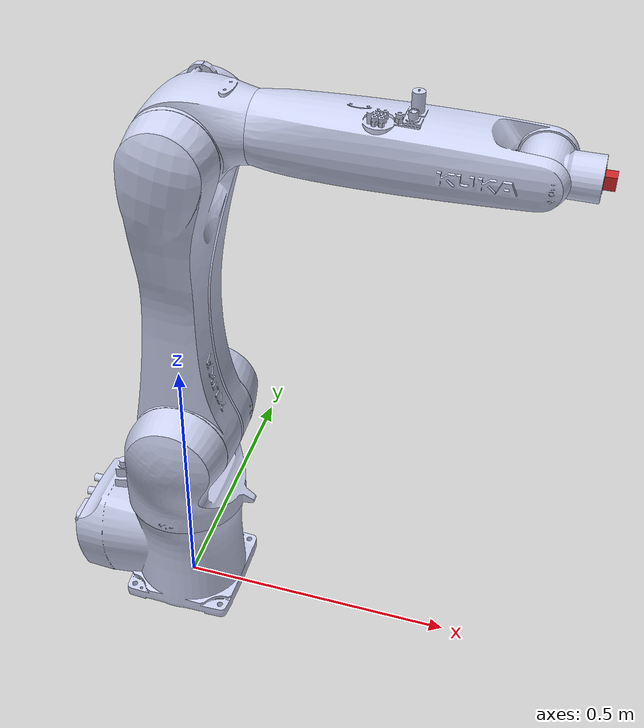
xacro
<?xml version="1.0"?>
<robot xmlns:xacro="http://ros.org/wiki/xacro"
       name="kr10">>

  <!-- common stuff // load kr_arm_gazebo macro -->
  <xacro:include filename="$(find kuka_kr10_urdf)/urdf/common.gazebo.xacro" />

  <!-- load kr10_robot & camera macros  -->
  <xacro:include filename="$(find kuka_kr10_urdf)/urdf/kr10.urdf.xacro" />
  <xacro:include filename="$(find kuka_kr10_urdf)/urdf/camera.xacro" />

  <!-- execute macros -->
  <xacro:kr10_robot prefix=""/>
  <xacro:camera />

</robot>

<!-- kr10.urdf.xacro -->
<robot xmlns:controller="http://playerstage.sourceforge.net/gazebo/xmlschema/#controller"
       xmlns:interface="http://ros.org/wiki/xacro"
       xmlns:sensor="http://playerstage.sourceforge.net/gazebo/xmlschema/#sensor"
       xmlns:xacro="http://ros.org/wiki/xacro">

  <xacro:include filename="$(find kuka_kr10_urdf)/urdf/kr10.transmission.xacro" />
  <xacro:include filename="$(find kuka_kr10_urdf)/urdf/kr10.gazebo.xacro" />

  <xacro:property name="damping" value="0.2" />
  <xacro:property name="friction" value="1.0" />

<xacro:macro name="default_inertia">
  <inertia ixx="0.1" ixy="0.000"  ixz="0.000"
           iyy="0.1" iyz="0.000"
           izz="0.1"
  />
</xacro:macro>

<xacro:macro name="kr10_robot" params="prefix">

  <link name="world" />

  <joint name="world_joint" type="fixed">
    <parent link="world" />
    <child link = "base_link" />
    <origin xyz="0.0 0.0 0.005" rpy="0.0 0.0 0.0" />
  </joint>

<!-- Kinematic model -->

  <link
    name="base_link">
    <inertial>
      <origin
        xyz="-0.044481 -5.0058E-05 0.10609"
        rpy="0 0 0" />
      <mass
        value="10.507" />
      <xacro:default_inertia />
    </inertial>
    <visual>
      <origin
        xyz="0 0 0"
        rpy="0 0 0" />
      <geometry>
        <mesh
          filename="package://kuka_kr10_urdf/meshes/base_link.STL" />
      </geometry>
      <material
        name="">
        <color
          rgba="0.79216 0.81961 0.93333 1" />
      </material>
    </visual>
    <collision>
      <origin
        xyz="0 0 0"
        rpy="0 0 0" />
      <geometry>
        <mesh
          filename="package://kuka_kr10_urdf/meshes/base_link.STL" />
      </geometry>
    </collision>
  </link>
  <link
    name="Link_1">
    <inertial>
      <origin
        xyz="0.00796588282256565 0.00201742612994055 0.115716194551813"
        rpy="0 0 0" />
      <mass
        value="6.2752263325597" />
      <xacro:default_inertia />
    </inertial>
    <visual>
      <origin
        xyz="0 0 0"
        rpy="0 0 0" />
      <geometry>
        <mesh
          filename="package://kuka_kr10_urdf/meshes/Link_1.STL" />
      </geometry>
      <material
        name="">
        <color
          rgba="0.792156862745098 0.819607843137255 0.933333333333333 1" />
      </material>
    </visual>
    <collision>
      <origin
        xyz="0 0 0"
        rpy="0 0 0" />
      <geometry>
        <mesh
          filename="package://kuka_kr10_urdf/meshes/Link_1.STL" />
      </geometry>
    </collision>
  </link>
  <joint
    name="Joint_1"
    type="continuous">
    <origin
      xyz="0 0 0.213"
      rpy="0 0 0" />
    <parent
      link="base_link" />
    <child
      link="Link_1" />
    <axis
      xyz="0 0 1" />
    <limit effort="100.0" lower="${radians(-170)}" upper="${radians(170)}" velocity="3.0"/>
    <dynamics damping="${damping}" friction="${friction}"/>
  </joint>
  <link
    name="Link_2">
    <inertial>
      <origin
        xyz="-0.0083425 -0.0044476 0.26096"
        rpy="0 0 0" />
      <mass
        value="10.062" />
      <xacro:default_inertia />
    </inertial>
    <visual>
      <origin
        xyz="0 0 0"
        rpy="0 0 0" />
      <geometry>
        <mesh
          filename="package://kuka_kr10_urdf/meshes/Link_2.STL" />
      </geometry>
      <material
        name="">
        <color
          rgba="0.79216 0.81961 0.93333 1" />
      </material>
    </visual>
    <collision>
      <origin
        xyz="0 0 0"
        rpy="0 0 0" />
      <geometry>
        <mesh
          filename="package://kuka_kr10_urdf/meshes/Link_2.STL" />
      </geometry>
    </collision>
  </link>
  <joint
    name="Joint_2"
    type="continuous">
    <origin
      xyz="0.025 0 0.183"
      rpy="0 0.030324 0" />
    <parent
      link="Link_1" />
    <child
      link="Link_2" />
    <axis
      xyz="0 1 0" />
    <limit effort="100.0" lower="${radians(-190)}" upper="${radians(45)}" velocity="3.0"/>
    <dynamics damping="${damping}" friction="${friction}"/>
  </joint>
  <link
    name="Link_3">
    <inertial>
      <origin
        xyz="0.01607 2.4742E-05 0.010478"
        rpy="0 0 0" />
      <mass
        value="2.8742" />
      <xacro:default_inertia />
    </inertial>
    <visual>
      <origin
        xyz="0 0 0"
        rpy="0 0 0" />
      <geometry>
        <mesh
          filename="package://kuka_kr10_urdf/meshes/Link_3.STL" />
      </geometry>
      <material
        name="">
        <color
          rgba="0.79216 0.81961 0.93333 1" />
      </material>
    </visual>
    <collision>
      <origin
        xyz="0 0 0"
        rpy="0 0 0" />
      <geometry>
        <mesh
          filename="package://kuka_kr10_urdf/meshes/Link_3.STL" />
      </geometry>
    </collision>
  </link>
  <joint
    name="Joint_3"
    type="continuous">
    <origin
      xyz="0 0 0.56"
      rpy="0 -0.030324 0" />
    <parent
      link="Link_2" />
    <child
      link="Link_3" />
    <axis
      xyz="0 1 0" />
    <limit effort="100.0" lower="${radians(-120)}" upper="${radians(156)}" velocity="3.0"/>
    <dynamics damping="${damping}" friction="${friction}"/>
  </joint>
  <link
    name="Link_4">
    <inertial>
      <origin
        xyz="0.195135071129115 -0.000495676139749157 0.000329967769836514"
        rpy="0 0 0" />
      <mass
        value="4.03663145228616" />
      <xacro:default_inertia />
    </inertial>
    <visual>
      <origin
        xyz="0 0 0"
        rpy="0 0 0" />
      <geometry>
        <mesh
          filename="package://kuka_kr10_urdf/meshes/Link_4.STL" />
      </geometry>
      <material
        name="">
        <color
          rgba="0.792156862745098 0.819607843137255 0.933333333333333 1" />
      </material>
    </visual>
    <collision>
      <origin
        xyz="0 0 0"
        rpy="0 0 0" />
      <geometry>
        <mesh
          filename="package://kuka_kr10_urdf/meshes/Link_4.STL" />
      </geometry>
    </collision>
  </link>
  <joint
    name="Joint_4"
    type="continuous">
    <origin
      xyz="0.10698 0 0.035"
      rpy="0 0 0" />
    <parent
      link="Link_3" />
    <child
      link="Link_4" />
    <axis
      xyz="1 0 0" />
    <limit effort="100.0" lower="${radians(-185)}" upper="${radians(185)}" velocity="3.0"/>
    <dynamics damping="${damping}" friction="${friction}"/>
  </joint>
  <link
    name="Link_5">
    <inertial>
      <origin
        xyz="0.016609 0.0018881 -2.9968E-05"
        rpy="0 0 0" />
      <mass
        value="0.44798" />
      <xacro:default_inertia />
    </inertial>
    <visual>
      <origin
        xyz="0 0 0"
        rpy="0 0 0" />
      <geometry>
        <mesh
          filename="package://kuka_kr10_urdf/meshes/Link_5.STL" />
      </geometry>
      <material
        name="">
        <color
          rgba="0.79216 0.81961 0.93333 1" />
      </material>
    </visual>
    <collision>
      <origin
        xyz="0 0 0"
        rpy="0 0 0" />
      <geometry>
        <mesh
          filename="package://kuka_kr10_urdf/meshes/Link_5.STL" />
      </geometry>
    </collision>
  </link>
  <joint
    name="Joint_5"
    type="continuous">
    <origin
      xyz="0.40802 0 0"
      rpy="0 0 0" />
    <parent
      link="Link_4" />
    <child
      link="Link_5" />
    <axis
      xyz="0 1 0" />
    <limit effort="100.0" lower="${radians(-120)}" upper="${radians(120)}" velocity="3.0"/>
    <dynamics damping="${damping}" friction="${friction}"/>
  </joint>
  <link
    name="Link_6">
    <inertial>
      <origin
        xyz="0.00597810440147417 5.10702591327572E-15 4.33845548888367E-05"
        rpy="0 0 0" />
      <mass
        value="0.013916296749675" />
      <xacro:default_inertia />
    </inertial>
    <visual>
      <origin
        xyz="0 0 0"
        rpy="0 0 0" />
      <geometry>
        <mesh
          filename="package://kuka_kr10_urdf/meshes/Link_6.STL" />
      </geometry>
      <material
        name="">
        <color
          rgba="0.792156862745098 0.819607843137255 0.933333333333333 1" />
      </material>
    </visual>
    <collision>
      <origin
        xyz="0 0 0"
        rpy="0 0 0" />
      <geometry>
        <mesh
          filename="package://kuka_kr10_urdf/meshes/Link_6.STL" />
      </geometry>
    </collision>
  </link>
  <joint
    name="Joint_6"
    type="continuous">
    <origin
      xyz="0.0665 0 0"
      rpy="0 0 0" />
    <parent
      link="Link_5" />
    <child
      link="Link_6" />
    <axis
      xyz="1 0 0" />
    <limit effort="100.0" lower="${radians(-180)}" upper="${radians(180)}" velocity="3.0"/>
    <!--dynamics damping="${damping}" friction="${friction}"/-->
  </joint>

  <xacro:kr_arm_transmission prefix="" />
  <xacro:kr_arm_gazebo prefix="" />

  </xacro:macro>

 </robot>

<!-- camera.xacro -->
<robot xmlns:xacro="http://ros.org/wiki/xacro">

  <xacro:macro name="camera"> <!-- params="parent_link"-->

  <xacro:property name="height3" value="0" /> <!-- Link 3 -->
  <xacro:property name="camera_link" value="0.02" /> <!-- Size of square 'camera' box -->
  <xacro:property name="axel_offset" value="0.05" /> <!-- Space btw top of beam and the each joint -->

  <joint name="camera_joint" type="fixed">
    <axis xyz="0 1 0" />
    <origin xyz="${camera_link} 0 0" rpy="0 0 0"/>
    <parent link="Link_6"/>
    <child link="camera_link"/>
  </joint>

  <!-- Camera -->
  <link name="camera_link">
    <collision>
      <origin xyz="0 0 0" rpy="0 0 0"/>
      <geometry>
	<box size="${camera_link} ${camera_link} ${camera_link}"/>
      </geometry>
    </collision>

    <visual>
      <origin xyz="0 0 0" rpy="0 0 0"/>
      <geometry>
	<box size="${camera_link} ${camera_link} ${camera_link}"/>
      </geometry>
      <material name="red"/>
    </visual>

    <inertial>
      <mass value="1e-5" />
      <origin xyz="0 0 0" rpy="0 0 0"/>
      <inertia ixx="1e-6" ixy="0" ixz="0" iyy="1e-6" iyz="0" izz="1e-6" />
    </inertial>
  </link>

  <!-- generate an optical frame http://www.ros.org/reps/rep-0103.html#suffix-frames
      so that ros and opencv can operate on the camera frame correctly -->
  <link name="camera_link_optical">
  </link>

  <joint name="camera_optical_joint" type="fixed">
    <!-- these values have to be these values otherwise the gazebo camera image
        won't be aligned properly with the frame it is supposedly originating from -->
    <origin xyz="0 0 0" rpy="${-pi/2} 0 ${-pi/2}"/>
    <parent link="camera_link"/>
    <child link="camera_link_optical"/>
  </joint>

  <!-- camera - gazebo definitions-->
  <gazebo reference="camera_link">
    <sensor type="camera" name="camera1">
      <update_rate>30.0</update_rate>
      <camera name="head">
        <horizontal_fov>1.3962634</horizontal_fov>
        <image>
          <width>800</width>
          <height>800</height>
          <format>R8G8B8</format>
        </image>
        <clip>
          <near>0.02</near>
          <far>300</far>
        </clip>
        <noise>
          <type>gaussian</type>
          <!-- Noise is sampled independently per pixel on each frame.
               That pixel's noise value is added to each of its color
               channels, which at that point lie in the range [0,1]. -->
          <mean>0.0</mean>
          <stddev>0.007</stddev>
        </noise>
      </camera>
      <plugin name="camera_controller" filename="libgazebo_ros_camera.so">
        <alwaysOn>true</alwaysOn>
        <updateRate>0.0</updateRate>
        <cameraName>rrbot/camera1</cameraName>
        <imageTopicName>image_raw</imageTopicName>
        <cameraInfoTopicName>camera_info</cameraInfoTopicName>
        <frameName>camera_link_optical</frameName>
        <!-- setting hackBaseline to anything but 0.0 will cause a misalignment
            between the gazebo sensor image and the frame it is supposed to
            be attached to -->
        <hackBaseline>0.0</hackBaseline>
        <distortionK1>0.0</distortionK1>
        <distortionK2>0.0</distortionK2>
        <distortionK3>0.0</distortionK3>
        <distortionT1>0.0</distortionT1>
        <distortionT2>0.0</distortionT2>
        <CxPrime>0</CxPrime>
        <Cx>0.0</Cx>
        <Cy>0.0</Cy>
        <focalLength>0.0</focalLength>
      </plugin>
    </sensor>
  </gazebo>

  </xacro:macro>

</robot>
